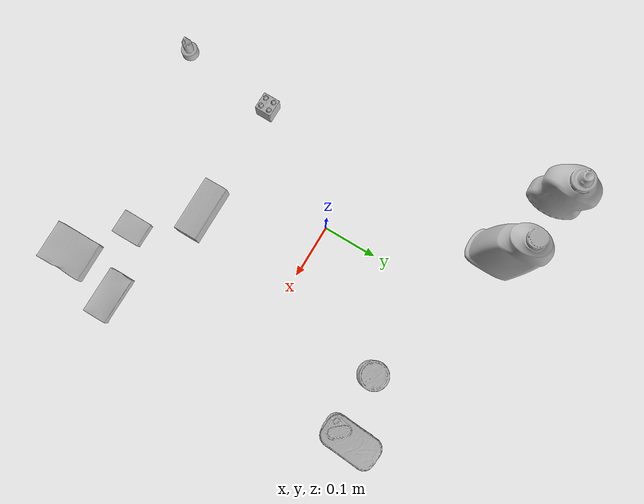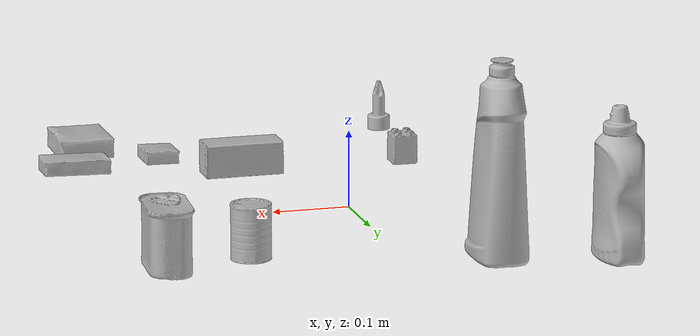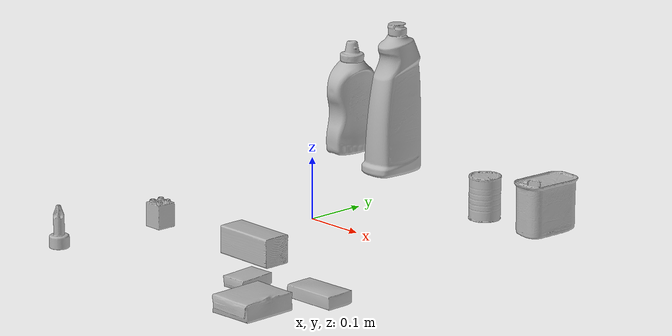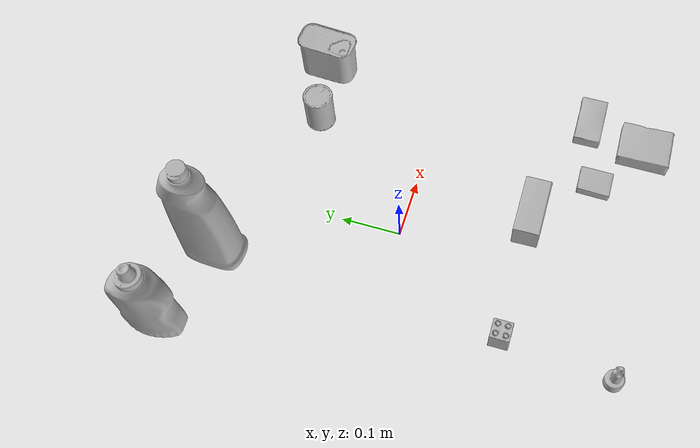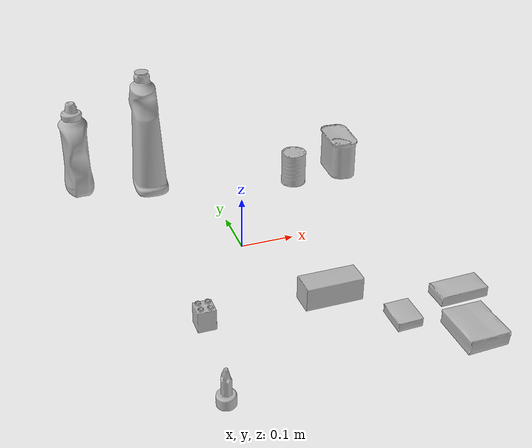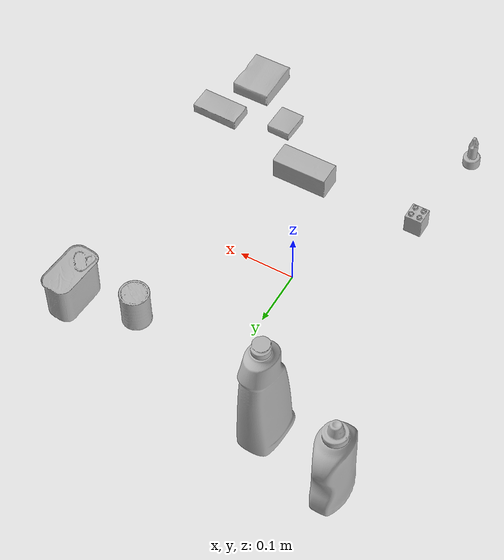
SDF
<?xml version="1.0" ?>
<sdf version="1.4">
  <world name="default">
    <light name="light1" type="point">
      <pose>0 0 1 0 0 0</pose>
      <diffuse>3 3 3 1</diffuse>
      <specular>3 3 3 1</specular>
    </light>
    <light name="light2" type="point">
      <pose>0 0.5 2 0 0 0</pose>
      <diffuse>1 1 1 1</diffuse>
      <specular>1 1 1 1</specular>
    </light>
    <light name="light3" type="point">
      <pose>0 0.5 2 0 0 0</pose>
      <diffuse>3 3 3 1</diffuse>
      <specular>3 3 3 1</specular>
    </light>
    <scene>
      <ambient>0.7 0.7 0.7</ambient>
    </scene>
    <model name="bottle1">
      <link name="link_bottle1">
        <collision name="default">
          <geometry>
            <mesh>
              <uri>model://bleach_cleanser/collision_meshes/collision.obj</uri>
              <scale>1.0 1.0 1.0</scale>
            </mesh>
          </geometry>
          <surface>
            <friction>
              <ode>
                <mu>0.5</mu>
                <mu2>0.5</mu2>
              </ode>
            </friction>
          </surface>
        </collision>
        <visual name="default">
          <geometry>
            <mesh>
              <uri>model://bleach_cleanser/visual_meshes/visual.dae</uri>
              <scale>1.0 1.0 1.0</scale>
            </mesh>
          </geometry>
        </visual>
        <inertial>
          <mass>1.578364610671997</mass>
          <pose>0.00012193182919872925 0.003783882362768054 -0.024421613663434982 -0.07381669869228723 0.000420116582496686 -0.006875050642452563</pose>
          <inertia>
            <ixx>0.00768213</ixx>
            <iyy>0.0071586203</iyy>
            <izz>0.0013134446</izz>
            <ixy>0</ixy>
            <ixz>0</ixz>
            <iyz>0</iyz>
          </inertia>
        </inertial>
      </link>
      <pose>-0.10983224213123322 0.2798605263233185 0.1257842481136322 -0.0002053218747126571 1.1665981426815724e-05 -0.01555750101429069</pose>
    </model>
    <model name="bottle2">
      <link name="link_bottle2">
        <collision name="default">
          <geometry>
            <mesh>
              <uri>model://mustard_bottle/collision_meshes/collision.obj</uri>
              <scale>1.0 1.0 1.0</scale>
            </mesh>
          </geometry>
          <surface>
            <friction>
              <ode>
                <mu>0.5</mu>
                <mu2>0.5</mu2>
              </ode>
            </friction>
          </surface>
        </collision>
        <visual name="default">
          <geometry>
            <mesh>
              <uri>model://mustard_bottle/visual_meshes/visual.dae</uri>
              <scale>1.0 1.0 1.0</scale>
            </mesh>
          </geometry>
        </visual>
        <inertial>
          <mass>0.5896905064582825</mass>
          <pose>0.000503245391882956 -0.00015647403779439628 -0.0174757931381464 0.00041823284967905286 0.0009465779461724547 0.024853724225743102</pose>
          <inertia>
            <ixx>0.00163749</ixx>
            <iyy>0.0014367587</iyy>
            <izz>0.00043156123</izz>
            <ixy>0</ixy>
            <ixz>0</ixz>
            <iyz>0</iyz>
          </inertia>
        </inertial>
      </link>
      <pose>-0.250857949256897 0.31939896941185 0.09615199267864227 1.335922548240365e-05 1.442420891148097e-05 0.002408585783100887</pose>
    </model>
    <model name="toy1">
      <link name="link_toy1">
        <collision name="default">
          <geometry>
            <mesh>
              <uri>model://b_lego_duplo/collision_meshes/collision.obj</uri>
              <scale>1.0 1.0 1.0</scale>
            </mesh>
          </geometry>
          <surface>
            <friction>
              <ode>
                <mu>0.5</mu>
                <mu2>0.5</mu2>
              </ode>
            </friction>
          </surface>
        </collision>
        <visual name="default">
          <geometry>
            <mesh>
              <uri>model://b_lego_duplo/visual_meshes/visual.dae</uri>
              <scale>1.0 1.0 1.0</scale>
            </mesh>
          </geometry>
        </visual>
        <inertial>
          <mass>0.04927889630198479</mass>
          <pose>-0.00011053016351070255 -9.152428901870735e-06 0.0019294293597340584 -0.03749545918935276 -0.026353596882306905 0.4519115393215097</pose>
          <inertia>
            <ixx>1.0085294e-05</ixx>
            <iyy>1.015309e-05</iyy>
            <izz>8.985672e-06</izz>
            <ixy>0</ixy>
            <ixz>0</ixz>
            <iyz>0</iyz>
          </inertia>
        </inertial>
      </link>
      <pose>-0.13000500202178955 -0.20004390180110931 0.02181500941514969 5.135888443700248e-07 2.5152956556782785e-07 -0.0002823090463146319</pose>
    </model>
    <model name="toy2">
      <link name="link_toy2">
        <collision name="default">
          <geometry>
            <mesh>
              <uri>model://d_toy_airplane/collision_meshes/collision.obj</uri>
              <scale>1.0 1.0 1.0</scale>
            </mesh>
          </geometry>
          <surface>
            <friction>
              <ode>
                <mu>0.5</mu>
                <mu2>0.5</mu2>
              </ode>
            </friction>
          </surface>
        </collision>
        <visual name="default">
          <geometry>
            <mesh>
              <uri>model://d_toy_airplane/visual_meshes/visual.dae</uri>
              <scale>1.0 1.0 1.0</scale>
            </mesh>
          </geometry>
        </visual>
        <inertial>
          <mass>0.023543989285826683</mass>
          <pose>9.41029647947289e-05 -5.8093268307857215e-05 -0.011728093028068542 0.0002670074791080515 0.004678977428991067 0.5194709842729006</pose>
          <inertia>
            <ixx>7.058034e-06</ixx>
            <iyy>7.063356e-06</iyy>
            <izz>2.1308651e-06</izz>
            <ixy>0</ixy>
            <ixz>0</ixz>
            <iyz>0</iyz>
          </inertia>
        </inertial>
      </link>
      <pose>-0.14999446272850037 -0.37996724247932434 0.03333878517150879 -2.840409539003056e-05 -0.00016956984959337601 -0.035333179474674105</pose>
    </model>
    <model name="can1">
      <link name="link_can1">
        <collision name="default">
          <geometry>
            <mesh>
              <uri>model://master_chef_can/collision_meshes/collision.obj</uri>
              <scale>0.5 0.5 0.5</scale>
            </mesh>
          </geometry>
          <surface>
            <friction>
              <ode>
                <mu>0.5</mu>
                <mu2>0.5</mu2>
              </ode>
            </friction>
          </surface>
        </collision>
        <visual name="default">
          <geometry>
            <mesh>
              <uri>model://master_chef_can/visual_meshes/visual.dae</uri>
              <scale>0.5 0.5 0.5</scale>
            </mesh>
          </geometry>
        </visual>
        <inertial>
          <mass>0.13489052653312683</mass>
          <pose>-4.6619643399026245e-05 1.392684936263322e-07 -5.080000119050965e-05 -0.0017995055981966167 0.0006479432683086387 -0.6102521024359563</pose>
          <inertia>
            <ixx>7.9171594e-05</ixx>
            <iyy>7.85889e-05</iyy>
            <izz>4.3748354e-05</izz>
            <ixy>0</ixy>
            <ixz>0</ixz>
            <iyz>0</iyz>
          </inertia>
        </inertial>
      </link>
      <pose>0.180117666721344 0.20009048283100128 0.03530199080705643 -1.4587335849743665e-06 -7.476113696881178e-07 0.051552268322126504</pose>
    </model>
    <model name="can2">
      <link name="link_can2">
        <collision name="default">
          <geometry>
            <mesh>
              <uri>model://potted_meat_can/collision_meshes/collision.obj</uri>
              <scale>1.0 1.0 1.0</scale>
            </mesh>
          </geometry>
          <surface>
            <friction>
              <ode>
                <mu>0.5</mu>
                <mu2>0.5</mu2>
              </ode>
            </friction>
          </surface>
        </collision>
        <visual name="default">
          <geometry>
            <mesh>
              <uri>model://potted_meat_can/visual_meshes/visual.dae</uri>
              <scale>1.0 1.0 1.0</scale>
            </mesh>
          </geometry>
        </visual>
        <inertial>
          <mass>0.4512253701686859</mass>
          <pose>0.00022888150124344975 -5.9891150158364326e-05 -0.0006367433816194534 -0.028093371406289817 -0.007232609295346345 0.015406271951796056</pose>
          <inertia>
            <ixx>0.00058045425</ixx>
            <iyy>0.00035267006</iyy>
            <izz>0.00042216998</izz>
            <ixy>0</ixy>
            <ixz>0</ixz>
            <iyz>0</iyz>
          </inertia>
        </inertial>
      </link>
      <pose>0.28989917039871216 0.2200133055448532 0.042128004133701324 -6.553964466433829e-08 -4.345971094570381e-07 -0.07692972725302584</pose>
    </model>
    <model name="box1">
      <link name="link_box1">
        <collision name="default">
          <geometry>
            <mesh>
              <uri>model://pudding_box/collision_meshes/collision.obj</uri>
              <scale>0.5 0.5 0.5</scale>
            </mesh>
          </geometry>
          <surface>
            <friction>
              <ode>
                <mu>0.5</mu>
                <mu2>0.5</mu2>
              </ode>
            </friction>
          </surface>
        </collision>
        <visual name="default">
          <geometry>
            <mesh>
              <uri>model://pudding_box/visual_meshes/visual.dae</uri>
              <scale>0.5 0.5 0.5</scale>
            </mesh>
          </geometry>
        </visual>
        <inertial>
          <mass>0.02510015107691288</mass>
          <pose>0.00024474109522998333 0.0004033942532259971 -0.0002594413817860186 0.005213101332996491 -0.0066037987089797995 0.020079823298230236</pose>
          <inertia>
            <ixx>7.093607e-06</ixx>
            <iyy>4.7726294e-06</iyy>
            <izz>1.04755645e-05</izz>
            <ixy>0</ixy>
            <ixz>0</ixz>
            <iyz>0</iyz>
          </inertia>
        </inertial>
      </link>
      <pose>0.17974132299423218 -0.29025211930274963 0.009862902574241161 0.022348633443424304 -0.011391682488092494 -9.41663717788786e-05</pose>
    </model>
    <model name="box2">
      <link name="link_box2">
        <collision name="default">
          <geometry>
            <mesh>
              <uri>model://gelatin_box/collision_meshes/collision.obj</uri>
              <scale>1.0 1.0 1.0</scale>
            </mesh>
          </geometry>
          <surface>
            <friction>
              <ode>
                <mu>0.5</mu>
                <mu2>0.5</mu2>
              </ode>
            </friction>
          </surface>
        </collision>
        <visual name="default">
          <geometry>
            <mesh>
              <uri>model://gelatin_box/visual_meshes/visual.dae</uri>
              <scale>1.0 1.0 1.0</scale>
            </mesh>
          </geometry>
        </visual>
        <inertial>
          <mass>0.2452477514743805</mass>
          <pose>0.000431961816502735 0.00011156871187267825 -0.0003640321083366871 -0.0010503720803081407 -0.004755818225601415 0.01644055574590794</pose>
          <inertia>
            <ixx>0.0001731249</ixx>
            <iyy>0.0001236622</iyy>
            <izz>0.00026353472</izz>
            <ixy>0</ixy>
            <ixz>0</ixz>
            <iyz>0</iyz>
          </inertia>
        </inertial>
      </link>
      <pose>0.2699512541294098 -0.36007168889045715 0.01516831386834383 0.00559747872230411 -0.007304591940221677 6.955827690540426e-06</pose>
    </model>
    <model name="box3">
      <link name="link_box3">
        <collision name="default">
          <geometry>
            <mesh>
              <uri>model://sugar_box/collision_meshes/collision.obj</uri>
              <scale>0.5 0.5 0.5</scale>
            </mesh>
          </geometry>
          <surface>
            <friction>
              <ode>
                <mu>0.5</mu>
                <mu2>0.5</mu2>
              </ode>
            </friction>
          </surface>
        </collision>
        <visual name="default">
          <geometry>
            <mesh>
              <uri>model://sugar_box/visual_meshes/visual.dae</uri>
              <scale>0.5 0.5 0.5</scale>
            </mesh>
          </geometry>
        </visual>
        <inertial>
          <mass>0.12277840822935104</mass>
          <pose>0.0005171863595023751 1.9245549992774613e-05 -0.00018182402709499002 -0.0004046257474220826 0.0010506635214397083 0.0026153787892127145</pose>
          <inertia>
            <ixx>2.5574656e-05</ixx>
            <iyy>8.2662555e-05</iyy>
            <izz>9.895694e-05</izz>
            <ixy>0</ixy>
            <ixz>0</ixz>
            <iyz>0</iyz>
          </inertia>
        </inertial>
      </link>
      <pose>0.2995228171348572 -0.2601334750652313 0.011399305425584316 0.000774924901379169 -0.023433180289685124 0.00023458268006380266</pose>
    </model>
    <model name="box4">
      <link name="link_box4">
        <collision name="default">
          <geometry>
            <mesh>
              <uri>model://wood_block/collision_meshes/collision.obj</uri>
              <scale>0.5 0.5 0.5</scale>
            </mesh>
          </geometry>
          <surface>
            <friction>
              <ode>
                <mu>0.5</mu>
                <mu2>0.5</mu2>
              </ode>
            </friction>
          </surface>
        </collision>
        <visual name="default">
          <geometry>
            <mesh>
              <uri>model://wood_block/visual_meshes/visual.dae</uri>
              <scale>0.5 0.5 0.5</scale>
            </mesh>
          </geometry>
        </visual>
        <inertial>
          <mass>0.2967980206012726</mass>
          <pose>-2.9066577553749084e-06 -0.00028540470520965755 0.00013204291462898254 -0.05220902064674581 -0.005192696668457315 -0.006861378272965977</pose>
          <inertia>
            <ixx>9.929016e-05</ixx>
            <iyy>0.00031365763</iyy>
            <izz>0.00031248436</izz>
            <ixy>0</ixy>
            <ixz>0</ixz>
            <iyz>0</iyz>
          </inertia>
        </inertial>
      </link>
      <pose>0.08984745293855667 -0.19918082654476166 0.022629261016845703 -0.005208561492401134 0.005718723607440114 0.005452374866113052</pose>
    </model>
  </world>
</sdf>
